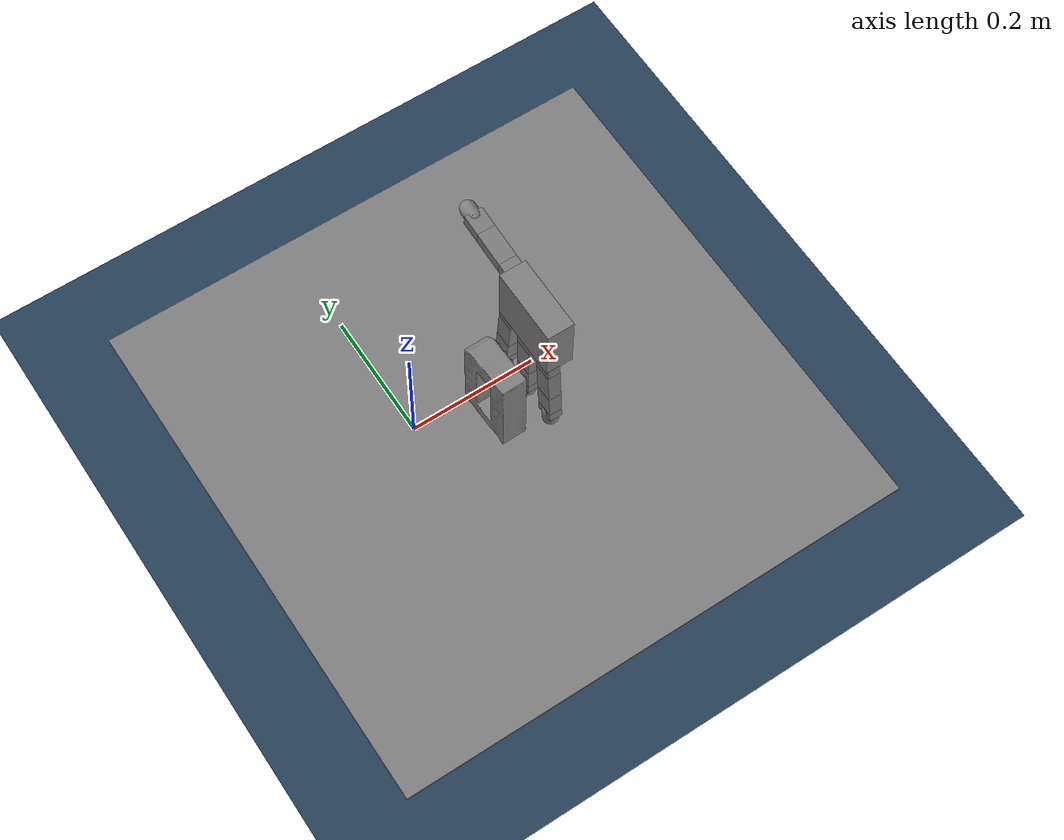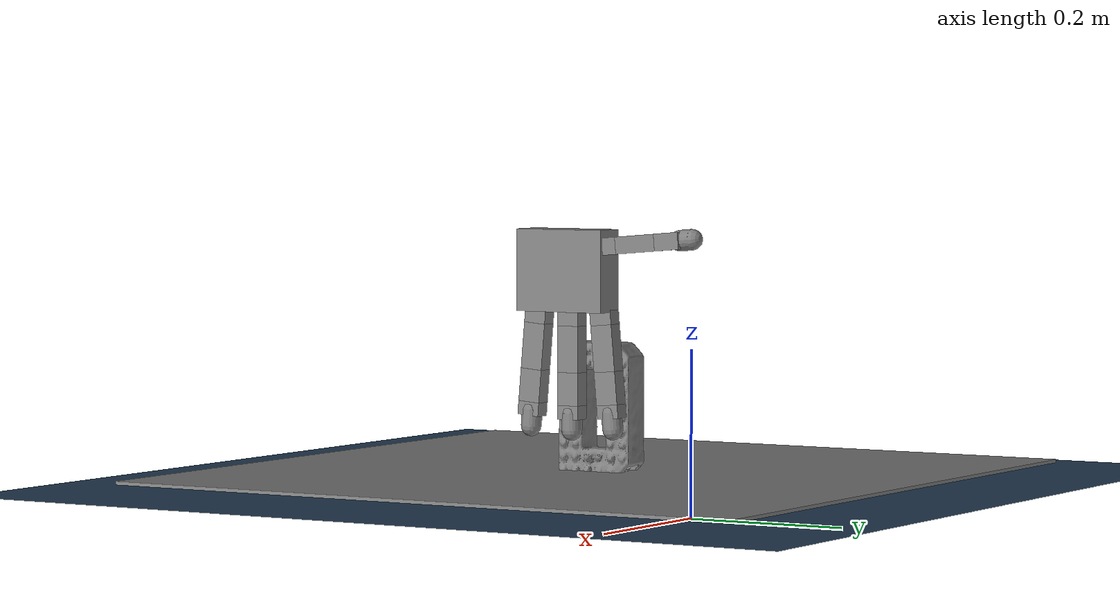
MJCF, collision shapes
<?xml version='1.0' encoding='utf-8'?>
<mujoco model="right_allegro_hand scene">
  <include file="right_hand_pushu.xml" />

  <statistic center="0 0 0" extent="0.3" />

  <visual>
    <rgba haze="0.15 0.25 0.35 1" />
    <quality shadowsize="8192" />
    <global azimuth="130" elevation="-40" />

  </visual>

  <asset>
    <texture type="skybox" builtin="gradient" rgb1="0.3 0.5 0.7" rgb2="0 0 0" width="512" height="3072" />
    <texture type="2d" name="groundplane" builtin="checker" mark="edge" rgb1="0.2 0.3 0.4" rgb2="0.1 0.2 0.3" markrgb="0.8 0.8 0.8" width="300" height="300" />
    <material name="groundplane" texture="groundplane" texuniform="true" texrepeat="5 5" reflectance="0.2" />

    <texture name="grid" type="2d" builtin="checker" width="512" height="512" rgb1=".1 .2 .3" rgb2=".2 .3 .4"/>
    <material name="grid" texture="grid" texrepeat="1 1" texuniform="true" reflectance=".2"/>

    <mesh name="my_mesh" file="D.stl"  scale="1 1 1" />
  </asset>

  <worldbody>
    <light pos="0 0 1" />
    <light pos="0.3 0 1.5" dir="0 0 -1" directional="true" />
    <camera name="top" focal="1.93e-3 1.93e-3" resolution="1280 720" sensorsize="3896e-6 2140e-6"
            pos="0 0 0.6" mode="fixed" quat="1 0 0 0"/>
        <camera name="side" focal="1.93e-3 1.93e-3" resolution="1280 720" sensorsize="3896e-6 2140e-6"
            pos="0 -0.5 0.1" mode="fixed" quat="0.7 0.7 0 0"/>
    <geom name="floor" pos="0 0 0.05" size="0 0 0.05" type="plane" material="grid"  condim="3"/>

	  <body name="D" pos="0.095 -0.07 0.13" quat=" 1 0 0 0 ">

	   <freejoint />

	    <geom name="D" type="mesh" mesh="my_mesh" condim="3" mass="0.5"  friction="0.05 0.005 0.0001" />
	  </body>

	  <body name="plate" pos="0.095 -0.07 0.06" quat="1 0.0 0.0 0.0">

	    <geom name="plate" type="box" size='0.4 0.4 0.002' />
	  </body>

  </worldbody>
</mujoco>

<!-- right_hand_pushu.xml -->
<mujoco model="allegro_right">
  <compiler angle="radian" meshdir="assets" autolimits="true" />

  <option cone="elliptic" impratio="10" />

  <default>
    <default class="allegro_right">
      <joint axis="0 1 0" damping=".1" />
      <position kp="1" />
      <geom density="800" />

      <default class="visual">
        <geom type="mesh" contype="0" conaffinity="0" group="2" material="black" />
        <default class="palm_visual">
          <geom mesh="base_link" />
        </default>
        <default class="base_visual">
          <geom mesh="link_0.0" />
        </default>
        <default class="proximal_visual">
          <geom mesh="link_1.0" />
        </default>
        <default class="medial_visual">
          <geom mesh="link_2.0" />
        </default>
        <default class="distal_visual">
          <geom mesh="link_3.0" />
        </default>
        <default class="fingertip_visual">
          <geom pos="0 0 0.0267" material="white" mesh="link_3.0_tip" />
        </default>
        <default class="thumbtip_visual">
          <geom pos="0 0 0.0423" material="white" mesh="link_15.0_tip" />
        </default>
      </default>

      <default class="collision">
        <geom group="3" type="box" mass="0" />
        <default class="palm_collision">
          <geom size="0.0204 0.0565 0.0475" pos="-0.0093 0 -0.0475" />
        </default>
        <default class="base_collision">
          <geom size="0.0098 0.01375 0.0082" pos="0 0 0.0082" />
          <default class="thumb_base_collision">
            <geom size="0.0179 0.017 0.02275" pos="-0.0179 0.009 0.0145" />
          </default>
        </default>
        <default class="proximal_collision">
          <geom size="0.0098 0.01375 0.027" pos="0 0 0.027" />
          <default class="thumb_proximal_collision">
            <geom size="0.0098 0.01375 0.00885" pos="0 0 0.00885" />
          </default>
        </default>
        <default class="medial_collision">
          <geom size="0.0098 0.01375 0.0192" pos="0 0 0.0192" />
          <default class="thumb_medial_collision">
            <geom size="0.0098 0.01375 0.0257" pos="0 0 0.0257" />
          </default>
        </default>
        <default class="distal_collision">
          <geom size="0.0098 0.01375 0.008" pos="0 0 0.008" />
          <default class="thumb_distal_collision">
            <geom size="0.0098 0.01375 0.0157" pos="0 0 0.0157" />
          </default>
        </default>
        <default class="fingertip_collision">
          <geom type="capsule" size="0.012 0.01" pos="0 0 0.019" />
          <default class="thumbtip_collision">
            <geom type="capsule" size="0.012 0.008" pos="0 0 0.035" />
          </default>
        </default>
      </default>

      <default class="base">
        <joint axis="0 0 1" range="-0.47 0.47" />
        <position ctrlrange="-0.47 0.47" />
      </default>
      <default class="proximal">
        <joint range="-0.196 1.61" />
        <position ctrlrange="-0.196 1.61" />
      </default>
      <default class="medial">
        <joint range="-0.174 1.709" />
        <position ctrlrange="-0.174 1.709" />
      </default>
      <default class="distal">
        <joint range="-0.227 1.618" />
        <position ctrlrange="-0.227 1.618" />
      </default>
      <default class="thumb_base">
        <joint axis="-1 0 0" range="0.263 1.396" />
        <position ctrlrange="0.263 1.396" />
      </default>
      <default class="thumb_proximal">
        <joint axis="0 0 1" range="-0.105 1.163" />
        <position ctrlrange="-0.105 1.163" />
      </default>
      <default class="thumb_medial">
        <joint range="-0.189 1.644" />
        <position ctrlrange="-0.189 1.644" />
      </default>
      <default class="thumb_distal">
        <joint range="-0.162 1.719" />
        <position ctrlrange="-0.162 1.719" />
      </default>
    </default>
  </default>

  <asset>
    <material name="black" rgba="0.2 0.2 0.2 1" />
    <material name="white" rgba="0.9 0.9 0.9 1" />

    <mesh file="base_link.stl" />
    <mesh file="link_0.0.stl" />
    <mesh file="link_1.0.stl" />
    <mesh file="link_2.0.stl" />
    <mesh file="link_3.0.stl" />
    <mesh file="link_3.0_tip.stl" />
    <mesh file="link_12.0_right.stl" />
    <mesh file="link_13.0.stl" />
    <mesh file="link_14.0.stl" />
    <mesh file="link_15.0.stl" />
    <mesh file="link_15.0_tip.stl" />
  </asset>

  <worldbody>
    <body name="palm" quat="3.749399456654644e-33 -6.123233995736766e-17 -1.0 6.123233995736766e-17" childclass="allegro_right" pos="0.14 -0.08 0.25">
      <inertial mass="0.4154" pos="0 0 0.0475" diaginertia="1e-4 1e-4 1e-4" />

      <geom class="palm_visual" mesh="base_link" />
      <geom class="palm_collision" />

      <body name="ff_base" pos="0 0.0435 -0.001542" quat="0.999048 -0.0436194 0 0">
        <joint name="ffj0" class="base" />
        <geom class="base_visual" />
        <geom class="base_collision" />
        <body name="ff_proximal" pos="0 0 0.0164">
          <joint name="ffj1" class="proximal" />
          <geom class="proximal_visual" />
          <geom class="proximal_collision" />
          <body name="ff_medial" pos="0 0 0.054">
            <joint name="ffj2" class="medial" />
            <geom class="medial_visual" />
            <geom class="medial_collision" />
            <body name="ff_distal" pos="0 0 0.0384">
              <joint name="ffj3" class="distal" />
              <geom class="distal_visual" />
              <geom class="distal_collision" />
              <body name="ff_tip">
                <geom class="fingertip_visual" />
                <geom class="fingertip_collision" />
              </body>
            </body>
          </body>
        </body>
      </body>

      <body name="mf_base" pos="0 0 0.0007">
        <joint name="mfj0" class="base" />
        <geom class="base_visual" />
        <geom class="base_collision" />
        <body name="mf_proximal" pos="0 0 0.0164">
          <joint name="mfj1" class="proximal" />
          <geom class="proximal_visual" />
          <geom class="proximal_collision" />
          <body name="mf_medial" pos="0 0 0.054">
            <joint name="mfj2" class="medial" />
            <geom class="medial_visual" />
            <geom class="medial_collision" />
            <body name="mf_distal" pos="0 0 0.0384">
              <joint name="mfj3" class="distal" />
              <geom class="distal_visual" />
              <geom class="distal_collision" />
              <body name="mf_tip">
                <geom class="fingertip_visual" />
                <geom class="fingertip_collision" />
              </body>
            </body>
          </body>
        </body>
      </body>

      <body name="rf_base" pos="0 -0.0435 -0.001542" quat="0.999048 0.0436194 0 0">
        <joint name="rfj0" class="base" />
        <geom class="base_visual" />
        <geom class="base_collision" />
        <body name="rf_proximal" pos="0 0 0.0164">
          <joint name="rfj1" class="proximal" />
          <geom class="proximal_visual" />
          <geom class="proximal_collision" />
          <body name="rf_medial" pos="0 0 0.054">
            <joint name="rfj2" class="medial" />
            <geom class="medial_visual" />
            <geom class="medial_collision" />
            <body name="rf_distal" pos="0 0 0.0384">
              <joint name="rfj3" class="distal" />
              <geom class="distal_visual" />
              <geom class="distal_collision" />
              <body name="rf_tip">
                <geom class="fingertip_visual" />
                <geom class="fingertip_collision" />
              </body>
            </body>
          </body>
        </body>
      </body>

      <body name="th_base" pos="-0.0182 0.019333 -0.045987" quat="0.477714 -0.521334 -0.521334 -0.477714">
        <joint name="thj0" class="thumb_base" />
        <geom class="visual" mesh="link_12.0_right" />
        <geom class="thumb_base_collision" />
        <body name="th_proximal" pos="-0.027 0.005 0.0399">
          <joint name="thj1" class="thumb_proximal" />
          <geom class="visual" mesh="link_13.0" />
          <geom class="thumb_proximal_collision" />
          <body name="th_medial" pos="0 0 0.0177">
            <joint name="thj2" class="thumb_medial" />
            <geom class="visual" mesh="link_14.0" />
            <geom class="thumb_medial_collision" />
            <body name="th_distal" pos="0 0 0.0514">
              <joint name="thj3" class="thumb_distal" />
              <geom class="visual" mesh="link_15.0" />
              <geom class="thumb_distal_collision" />
              <body name="th_tip">
                <geom class="thumbtip_visual" />
                <geom class="thumbtip_collision" />
              </body>
            </body>
          </body>
        </body>
      </body>
    </body>
  </worldbody>

  <contact>
    <exclude body1="palm" body2="ff_base" />
    <exclude body1="palm" body2="mf_base" />
    <exclude body1="palm" body2="rf_base" />
    <exclude body1="palm" body2="th_base" />
    <exclude body1="palm" body2="th_proximal" />
  </contact>

  <actuator>
    <position name="ffa0" joint="ffj0" class="base" />
    <position name="ffa1" joint="ffj1" class="proximal" />
    <position name="ffa2" joint="ffj2" class="medial" />
    <position name="ffa3" joint="ffj3" class="distal" />
    <position name="mfa0" joint="mfj0" class="base" />
    <position name="mfa1" joint="mfj1" class="proximal" />
    <position name="mfa2" joint="mfj2" class="medial" />
    <position name="mfa3" joint="mfj3" class="distal" />
    <position name="rfa0" joint="rfj0" class="base" />
    <position name="rfa1" joint="rfj1" class="proximal" />
    <position name="rfa2" joint="rfj2" class="medial" />
    <position name="rfa3" joint="rfj3" class="distal" />
    <position name="tha0" joint="thj0" class="thumb_base" />
    <position name="tha1" joint="thj1" class="thumb_proximal" />
    <position name="tha2" joint="thj2" class="thumb_medial" />
    <position name="tha3" joint="thj3" class="thumb_distal" />
  </actuator>
</mujoco>
